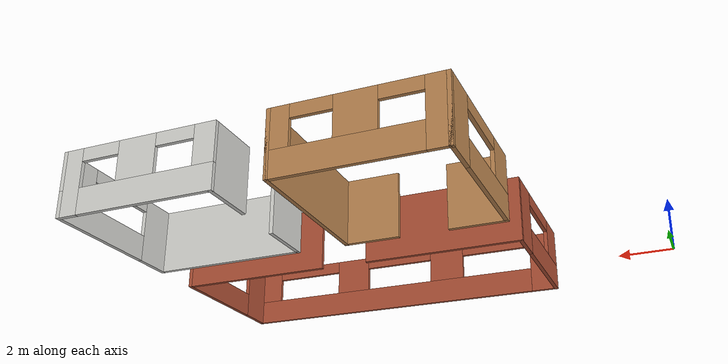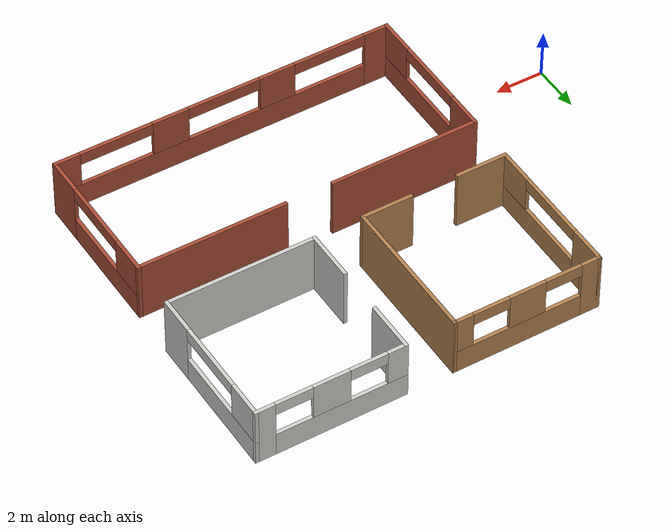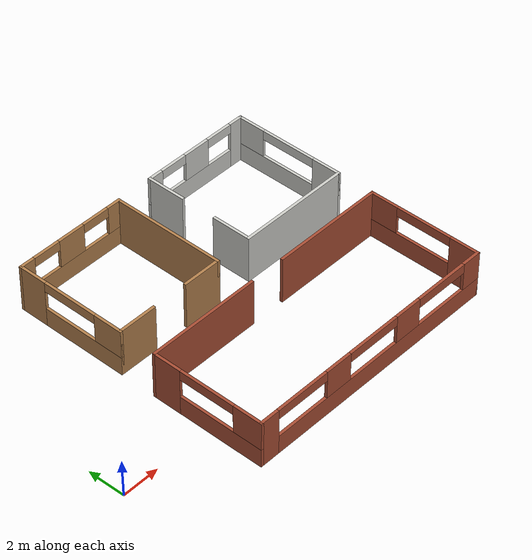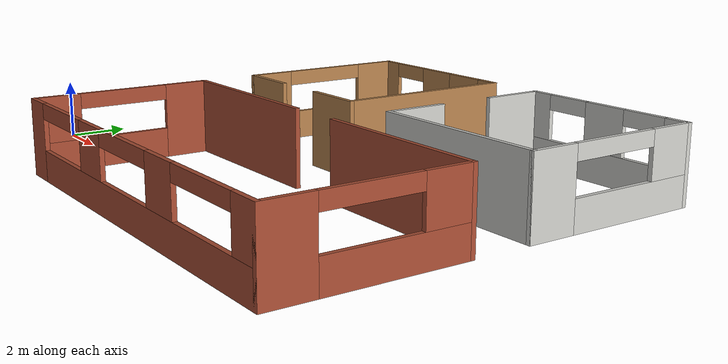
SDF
<?xml version='1.0'?>
<sdf version='1.6'>
  <model name='planning_project_big'>
    <pose frame=''>12 4 0 0 -0 0</pose>
    <link name='Wall_0'>
      <pose frame=''>-4 7 0 0 -0 0</pose>
      <visual name='Wall_0_Visual_0'>
        <pose frame=''>-2.6625 0 1.25 0 -0 0</pose>
        <geometry>
          <box>
            <size>0.825 0.15 2.5</size>
          </box>
        </geometry>
        <material>
          <script>
            <uri>file://media/materials/scripts/gazebo.material</uri>
            <name>Gazebo/Wood</name>
          </script>
          <ambient>1 1 1 1</ambient>
        </material>
      </visual>
      <collision name='Wall_0_Collision_0'>
        <geometry>
          <box>
            <size>0.825 0.15 2.5</size>
          </box>
        </geometry>
        <pose frame=''>-2.6625 0 1.25 0 -0 0</pose>
      </collision>
      <visual name='Wall_0_Visual_1'>
        <pose frame=''>0.4125 0 0.5 0 -0 0</pose>
        <geometry>
          <box>
            <size>5.325 0.15 1</size>
          </box>
        </geometry>
        <material>
          <script>
            <uri>file://media/materials/scripts/gazebo.material</uri>
            <name>Gazebo/Wood</name>
          </script>
          <ambient>1 1 1 1</ambient>
        </material>
      </visual>
      <collision name='Wall_0_Collision_1'>
        <geometry>
          <box>
            <size>5.325 0.15 1</size>
          </box>
        </geometry>
        <pose frame=''>0.4125 0 0.5 0 -0 0</pose>
      </collision>
      <visual name='Wall_0_Visual_2'>
        <pose frame=''>0 0 1.75 0 -0 0</pose>
        <geometry>
          <box>
            <size>1.5 0.15 1.5</size>
          </box>
        </geometry>
        <material>
          <script>
            <uri>file://media/materials/scripts/gazebo.material</uri>
            <name>Gazebo/Wood</name>
          </script>
          <ambient>1 1 1 1</ambient>
        </material>
      </visual>
      <collision name='Wall_0_Collision_2'>
        <geometry>
          <box>
            <size>1.5 0.15 1.5</size>
          </box>
        </geometry>
        <pose frame=''>0 0 1.75 0 -0 0</pose>
      </collision>
      <visual name='Wall_0_Visual_3'>
        <pose frame=''>2.6625 0 1.75 0 -0 0</pose>
        <geometry>
          <box>
            <size>0.825 0.15 1.5</size>
          </box>
        </geometry>
        <material>
          <script>
            <uri>file://media/materials/scripts/gazebo.material</uri>
            <name>Gazebo/Wood</name>
          </script>
          <ambient>1 1 1 1</ambient>
        </material>
      </visual>
      <collision name='Wall_0_Collision_3'>
        <geometry>
          <box>
            <size>0.825 0.15 1.5</size>
          </box>
        </geometry>
        <pose frame=''>2.6625 0 1.75 0 -0 0</pose>
      </collision>
      <visual name='Wall_0_Visual_4'>
        <pose frame=''>-1.5 0 2.25 0 -0 0</pose>
        <geometry>
          <box>
            <size>1.5 0.15 0.5</size>
          </box>
        </geometry>
        <material>
          <script>
            <uri>file://media/materials/scripts/gazebo.material</uri>
            <name>Gazebo/Wood</name>
          </script>
          <ambient>1 1 1 1</ambient>
        </material>
      </visual>
      <collision name='Wall_0_Collision_4'>
        <geometry>
          <box>
            <size>1.5 0.15 0.5</size>
          </box>
        </geometry>
        <pose frame=''>-1.5 0 2.25 0 -0 0</pose>
      </collision>
      <visual name='Wall_0_Visual_5'>
        <pose frame=''>1.5 0 2.25 0 -0 0</pose>
        <geometry>
          <box>
            <size>1.5 0.15 0.5</size>
          </box>
        </geometry>
        <material>
          <script>
            <uri>file://media/materials/scripts/gazebo.material</uri>
            <name>Gazebo/Wood</name>
          </script>
          <ambient>1 1 1 1</ambient>
        </material>
      </visual>
      <collision name='Wall_0_Collision_5'>
        <geometry>
          <box>
            <size>1.5 0.15 0.5</size>
          </box>
        </geometry>
        <pose frame=''>1.5 0 2.25 0 -0 0</pose>
      </collision>
    </link>
    <link name='Wall_1'>
      <collision name='Wall_1_Collision'>
        <geometry>
          <box>
            <size>6.15 0.15 2.5</size>
          </box>
        </geometry>
        <pose frame=''>0 0 1.25 0 -0 0</pose>
      </collision>
      <visual name='Wall_1_Visual'>
        <pose frame=''>0 0 1.25 0 -0 0</pose>
        <geometry>
          <box>
            <size>6.15 0.15 2.5</size>
          </box>
        </geometry>
        <material>
          <script>
            <uri>file://media/materials/scripts/gazebo.material</uri>
            <name>Gazebo/Wood</name>
          </script>
          <ambient>1 1 1 1</ambient>
        </material>
      </visual>
      <pose frame=''>-1 4 0 0 0 -1.5708</pose>
    </link>
    <link name='Wall_10'>
      <pose frame=''>4 7 0 0 -0 3.14159</pose>
      <visual name='Wall_10_Visual_0'>
        <pose frame=''>-2.6625 0 1.25 0 -0 0</pose>
        <geometry>
          <box>
            <size>0.825 0.15 2.5</size>
          </box>
        </geometry>
        <material>
          <script>
            <uri>file://media/materials/scripts/gazebo.material</uri>
            <name>Gazebo/CeilingTiled</name>
          </script>
          <ambient>1 1 1 1</ambient>
        </material>
      </visual>
      <collision name='Wall_10_Collision_0'>
        <geometry>
          <box>
            <size>0.825 0.15 2.5</size>
          </box>
        </geometry>
        <pose frame=''>-2.6625 0 1.25 0 -0 0</pose>
      </collision>
      <visual name='Wall_10_Visual_1'>
        <pose frame=''>0.4125 0 0.5 0 -0 0</pose>
        <geometry>
          <box>
            <size>5.325 0.15 1</size>
          </box>
        </geometry>
        <material>
          <script>
            <uri>file://media/materials/scripts/gazebo.material</uri>
            <name>Gazebo/CeilingTiled</name>
          </script>
          <ambient>1 1 1 1</ambient>
        </material>
      </visual>
      <collision name='Wall_10_Collision_1'>
        <geometry>
          <box>
            <size>5.325 0.15 1</size>
          </box>
        </geometry>
        <pose frame=''>0.4125 0 0.5 0 -0 0</pose>
      </collision>
      <visual name='Wall_10_Visual_2'>
        <pose frame=''>0 0 1.75 0 -0 0</pose>
        <geometry>
          <box>
            <size>1.5 0.15 1.5</size>
          </box>
        </geometry>
        <material>
          <script>
            <uri>file://media/materials/scripts/gazebo.material</uri>
            <name>Gazebo/CeilingTiled</name>
          </script>
          <ambient>1 1 1 1</ambient>
        </material>
      </visual>
      <collision name='Wall_10_Collision_2'>
        <geometry>
          <box>
            <size>1.5 0.15 1.5</size>
          </box>
        </geometry>
        <pose frame=''>0 0 1.75 0 -0 0</pose>
      </collision>
      <visual name='Wall_10_Visual_3'>
        <pose frame=''>2.6625 0 1.75 0 -0 0</pose>
        <geometry>
          <box>
            <size>0.825 0.15 1.5</size>
          </box>
        </geometry>
        <material>
          <script>
            <uri>file://media/materials/scripts/gazebo.material</uri>
            <name>Gazebo/CeilingTiled</name>
          </script>
          <ambient>1 1 1 1</ambient>
        </material>
      </visual>
      <collision name='Wall_10_Collision_3'>
        <geometry>
          <box>
            <size>0.825 0.15 1.5</size>
          </box>
        </geometry>
        <pose frame=''>2.6625 0 1.75 0 -0 0</pose>
      </collision>
      <visual name='Wall_10_Visual_4'>
        <pose frame=''>-1.5 0 2.25 0 -0 0</pose>
        <geometry>
          <box>
            <size>1.5 0.15 0.5</size>
          </box>
        </geometry>
        <material>
          <script>
            <uri>file://media/materials/scripts/gazebo.material</uri>
            <name>Gazebo/CeilingTiled</name>
          </script>
          <ambient>1 1 1 1</ambient>
        </material>
      </visual>
      <collision name='Wall_10_Collision_4'>
        <geometry>
          <box>
            <size>1.5 0.15 0.5</size>
          </box>
        </geometry>
        <pose frame=''>-1.5 0 2.25 0 -0 0</pose>
      </collision>
      <visual name='Wall_10_Visual_5'>
        <pose frame=''>1.5 0 2.25 0 -0 0</pose>
        <geometry>
          <box>
            <size>1.5 0.15 0.5</size>
          </box>
        </geometry>
        <material>
          <script>
            <uri>file://media/materials/scripts/gazebo.material</uri>
            <name>Gazebo/CeilingTiled</name>
          </script>
          <ambient>1 1 1 1</ambient>
        </material>
      </visual>
      <collision name='Wall_10_Collision_5'>
        <geometry>
          <box>
            <size>1.5 0.15 0.5</size>
          </box>
        </geometry>
        <pose frame=''>1.5 0 2.25 0 -0 0</pose>
      </collision>
    </link>
    <link name='Wall_11'>
      <collision name='Wall_11_Collision'>
        <geometry>
          <box>
            <size>2.15 0.15 2.5</size>
          </box>
        </geometry>
        <pose frame=''>0 0 1.25 0 -0 0</pose>
      </collision>
      <visual name='Wall_11_Visual'>
        <pose frame=''>0 0 1.25 0 -0 0</pose>
        <geometry>
          <box>
            <size>2.15 0.15 2.5</size>
          </box>
        </geometry>
        <material>
          <script>
            <uri>file://media/materials/scripts/gazebo.material</uri>
            <name>Gazebo/CeilingTiled</name>
          </script>
          <ambient>1 1 1 1</ambient>
        </material>
      </visual>
      <pose frame=''>1 6 0 0 0 -1.5708</pose>
    </link>
    <link name='Wall_13'>
      <collision name='Wall_13_Collision'>
        <geometry>
          <box>
            <size>6.15 0.15 2.5</size>
          </box>
        </geometry>
        <pose frame=''>0 0 1.25 0 -0 0</pose>
      </collision>
      <visual name='Wall_13_Visual'>
        <pose frame=''>0 0 1.25 0 -0 0</pose>
        <geometry>
          <box>
            <size>6.15 0.15 2.5</size>
          </box>
        </geometry>
        <material>
          <script>
            <uri>file://media/materials/scripts/gazebo.material</uri>
            <name>Gazebo/Bricks</name>
          </script>
          <ambient>1 1 1 1</ambient>
        </material>
      </visual>
      <pose frame=''>-4 -1 0 0 -0 3.14159</pose>
    </link>
    <link name='Wall_14'>
      <pose frame=''>-7 -4 0 0 0 -1.5708</pose>
      <visual name='Wall_14_Visual_0'>
        <pose frame=''>-2.2875 0 1.25 0 -0 0</pose>
        <geometry>
          <box>
            <size>1.575 0.15 2.5</size>
          </box>
        </geometry>
        <material>
          <script>
            <uri>file://media/materials/scripts/gazebo.material</uri>
            <name>Gazebo/Bricks</name>
          </script>
          <ambient>1 1 1 1</ambient>
        </material>
      </visual>
      <collision name='Wall_14_Collision_0'>
        <geometry>
          <box>
            <size>1.575 0.15 2.5</size>
          </box>
        </geometry>
        <pose frame=''>-2.2875 0 1.25 0 -0 0</pose>
      </collision>
      <visual name='Wall_14_Visual_1'>
        <pose frame=''>0.7875 0 0.5 0 -0 0</pose>
        <geometry>
          <box>
            <size>4.575 0.15 1</size>
          </box>
        </geometry>
        <material>
          <script>
            <uri>file://media/materials/scripts/gazebo.material</uri>
            <name>Gazebo/Bricks</name>
          </script>
          <ambient>1 1 1 1</ambient>
        </material>
      </visual>
      <collision name='Wall_14_Collision_1'>
        <geometry>
          <box>
            <size>4.575 0.15 1</size>
          </box>
        </geometry>
        <pose frame=''>0.7875 0 0.5 0 -0 0</pose>
      </collision>
      <visual name='Wall_14_Visual_2'>
        <pose frame=''>2.2875 0 1.75 0 -0 0</pose>
        <geometry>
          <box>
            <size>1.575 0.15 1.5</size>
          </box>
        </geometry>
        <material>
          <script>
            <uri>file://media/materials/scripts/gazebo.material</uri>
            <name>Gazebo/Bricks</name>
          </script>
          <ambient>1 1 1 1</ambient>
        </material>
      </visual>
      <collision name='Wall_14_Collision_2'>
        <geometry>
          <box>
            <size>1.575 0.15 1.5</size>
          </box>
        </geometry>
        <pose frame=''>2.2875 0 1.75 0 -0 0</pose>
      </collision>
      <visual name='Wall_14_Visual_3'>
        <pose frame=''>0 0 2.25 0 -0 0</pose>
        <geometry>
          <box>
            <size>3 0.15 0.5</size>
          </box>
        </geometry>
        <material>
          <script>
            <uri>file://media/materials/scripts/gazebo.material</uri>
            <name>Gazebo/Bricks</name>
          </script>
          <ambient>1 1 1 1</ambient>
        </material>
      </visual>
      <collision name='Wall_14_Collision_3'>
        <geometry>
          <box>
            <size>3 0.15 0.5</size>
          </box>
        </geometry>
        <pose frame=''>0 0 2.25 0 -0 0</pose>
      </collision>
    </link>
    <link name='Wall_15'>
      <pose frame=''>0 -7 0 0 -0 0</pose>
      <visual name='Wall_15_Visual_0'>
        <pose frame=''>-6.5375 0 1.25 0 -0 0</pose>
        <geometry>
          <box>
            <size>1.075 0.15 2.5</size>
          </box>
        </geometry>
        <material>
          <script>
            <uri>file://media/materials/scripts/gazebo.material</uri>
            <name>Gazebo/Bricks</name>
          </script>
          <ambient>1 1 1 1</ambient>
        </material>
      </visual>
      <collision name='Wall_15_Collision_0'>
        <geometry>
          <box>
            <size>1.075 0.15 2.5</size>
          </box>
        </geometry>
        <pose frame=''>-6.5375 0 1.25 0 -0 0</pose>
      </collision>
      <visual name='Wall_15_Visual_1'>
        <pose frame=''>0.5375 0 0.5 0 -0 0</pose>
        <geometry>
          <box>
            <size>13.075 0.15 1</size>
          </box>
        </geometry>
        <material>
          <script>
            <uri>file://media/materials/scripts/gazebo.material</uri>
            <name>Gazebo/Bricks</name>
          </script>
          <ambient>1 1 1 1</ambient>
        </material>
      </visual>
      <collision name='Wall_15_Collision_1'>
        <geometry>
          <box>
            <size>13.075 0.15 1</size>
          </box>
        </geometry>
        <pose frame=''>0.5375 0 0.5 0 -0 0</pose>
      </collision>
      <visual name='Wall_15_Visual_2'>
        <pose frame=''>-2.25 0 1.75 0 -0 0</pose>
        <geometry>
          <box>
            <size>1.5 0.15 1.5</size>
          </box>
        </geometry>
        <material>
          <script>
            <uri>file://media/materials/scripts/gazebo.material</uri>
            <name>Gazebo/Bricks</name>
          </script>
          <ambient>1 1 1 1</ambient>
        </material>
      </visual>
      <collision name='Wall_15_Collision_2'>
        <geometry>
          <box>
            <size>1.5 0.15 1.5</size>
          </box>
        </geometry>
        <pose frame=''>-2.25 0 1.75 0 -0 0</pose>
      </collision>
      <visual name='Wall_15_Visual_3'>
        <pose frame=''>2.25 0 1.75 0 -0 0</pose>
        <geometry>
          <box>
            <size>1.5 0.15 1.5</size>
          </box>
        </geometry>
        <material>
          <script>
            <uri>file://media/materials/scripts/gazebo.material</uri>
            <name>Gazebo/Bricks</name>
          </script>
          <ambient>1 1 1 1</ambient>
        </material>
      </visual>
      <collision name='Wall_15_Collision_3'>
        <geometry>
          <box>
            <size>1.5 0.15 1.5</size>
          </box>
        </geometry>
        <pose frame=''>2.25 0 1.75 0 -0 0</pose>
      </collision>
      <visual name='Wall_15_Visual_4'>
        <pose frame=''>6.5375 0 1.75 0 -0 0</pose>
        <geometry>
          <box>
            <size>1.075 0.15 1.5</size>
          </box>
        </geometry>
        <material>
          <script>
            <uri>file://media/materials/scripts/gazebo.material</uri>
            <name>Gazebo/Bricks</name>
          </script>
          <ambient>1 1 1 1</ambient>
        </material>
      </visual>
      <collision name='Wall_15_Collision_4'>
        <geometry>
          <box>
            <size>1.075 0.15 1.5</size>
          </box>
        </geometry>
        <pose frame=''>6.5375 0 1.75 0 -0 0</pose>
      </collision>
      <visual name='Wall_15_Visual_5'>
        <pose frame=''>-4.5 0 2.25 0 -0 0</pose>
        <geometry>
          <box>
            <size>3 0.15 0.5</size>
          </box>
        </geometry>
        <material>
          <script>
            <uri>file://media/materials/scripts/gazebo.material</uri>
            <name>Gazebo/Bricks</name>
          </script>
          <ambient>1 1 1 1</ambient>
        </material>
      </visual>
      <collision name='Wall_15_Collision_5'>
        <geometry>
          <box>
            <size>3 0.15 0.5</size>
          </box>
        </geometry>
        <pose frame=''>-4.5 0 2.25 0 -0 0</pose>
      </collision>
      <visual name='Wall_15_Visual_6'>
        <pose frame=''>-0 0 2.25 0 -0 0</pose>
        <geometry>
          <box>
            <size>3 0.15 0.5</size>
          </box>
        </geometry>
        <material>
          <script>
            <uri>file://media/materials/scripts/gazebo.material</uri>
            <name>Gazebo/Bricks</name>
          </script>
          <ambient>1 1 1 1</ambient>
        </material>
      </visual>
      <collision name='Wall_15_Collision_6'>
        <geometry>
          <box>
            <size>3 0.15 0.5</size>
          </box>
        </geometry>
        <pose frame=''>-0 0 2.25 0 -0 0</pose>
      </collision>
      <visual name='Wall_15_Visual_7'>
        <pose frame=''>4.5 0 2.25 0 -0 0</pose>
        <geometry>
          <box>
            <size>3 0.15 0.5</size>
          </box>
        </geometry>
        <material>
          <script>
            <uri>file://media/materials/scripts/gazebo.material</uri>
            <name>Gazebo/Bricks</name>
          </script>
          <ambient>1 1 1 1</ambient>
        </material>
      </visual>
      <collision name='Wall_15_Collision_7'>
        <geometry>
          <box>
            <size>3 0.15 0.5</size>
          </box>
        </geometry>
        <pose frame=''>4.5 0 2.25 0 -0 0</pose>
      </collision>
    </link>
    <link name='Wall_16'>
      <pose frame=''>7 -4 0 0 -0 1.5708</pose>
      <visual name='Wall_16_Visual_0'>
        <pose frame=''>-2.2875 0 1.25 0 -0 0</pose>
        <geometry>
          <box>
            <size>1.575 0.15 2.5</size>
          </box>
        </geometry>
        <material>
          <script>
            <uri>file://media/materials/scripts/gazebo.material</uri>
            <name>Gazebo/Bricks</name>
          </script>
          <ambient>1 1 1 1</ambient>
        </material>
      </visual>
      <collision name='Wall_16_Collision_0'>
        <geometry>
          <box>
            <size>1.575 0.15 2.5</size>
          </box>
        </geometry>
        <pose frame=''>-2.2875 0 1.25 0 -0 0</pose>
      </collision>
      <visual name='Wall_16_Visual_1'>
        <pose frame=''>0.7875 0 0.5 0 -0 0</pose>
        <geometry>
          <box>
            <size>4.575 0.15 1</size>
          </box>
        </geometry>
        <material>
          <script>
            <uri>file://media/materials/scripts/gazebo.material</uri>
            <name>Gazebo/Bricks</name>
          </script>
          <ambient>1 1 1 1</ambient>
        </material>
      </visual>
      <collision name='Wall_16_Collision_1'>
        <geometry>
          <box>
            <size>4.575 0.15 1</size>
          </box>
        </geometry>
        <pose frame=''>0.7875 0 0.5 0 -0 0</pose>
      </collision>
      <visual name='Wall_16_Visual_2'>
        <pose frame=''>2.2875 0 1.75 0 -0 0</pose>
        <geometry>
          <box>
            <size>1.575 0.15 1.5</size>
          </box>
        </geometry>
        <material>
          <script>
            <uri>file://media/materials/scripts/gazebo.material</uri>
            <name>Gazebo/Bricks</name>
          </script>
          <ambient>1 1 1 1</ambient>
        </material>
      </visual>
      <collision name='Wall_16_Collision_2'>
        <geometry>
          <box>
            <size>1.575 0.15 1.5</size>
          </box>
        </geometry>
        <pose frame=''>2.2875 0 1.75 0 -0 0</pose>
      </collision>
      <visual name='Wall_16_Visual_3'>
        <pose frame=''>0 0 2.25 0 -0 0</pose>
        <geometry>
          <box>
            <size>3 0.15 0.5</size>
          </box>
        </geometry>
        <material>
          <script>
            <uri>file://media/materials/scripts/gazebo.material</uri>
            <name>Gazebo/Bricks</name>
          </script>
          <ambient>1 1 1 1</ambient>
        </material>
      </visual>
      <collision name='Wall_16_Collision_3'>
        <geometry>
          <box>
            <size>3 0.15 0.5</size>
          </box>
        </geometry>
        <pose frame=''>0 0 2.25 0 -0 0</pose>
      </collision>
    </link>
    <link name='Wall_17'>
      <collision name='Wall_17_Collision'>
        <geometry>
          <box>
            <size>6.15 0.15 2.5</size>
          </box>
        </geometry>
        <pose frame=''>0 0 1.25 0 -0 0</pose>
      </collision>
      <visual name='Wall_17_Visual'>
        <pose frame=''>0 0 1.25 0 -0 0</pose>
        <geometry>
          <box>
            <size>6.15 0.15 2.5</size>
          </box>
        </geometry>
        <material>
          <script>
            <uri>file://media/materials/scripts/gazebo.material</uri>
            <name>Gazebo/Bricks</name>
          </script>
          <ambient>1 1 1 1</ambient>
        </material>
      </visual>
      <pose frame=''>4 -1 0 0 -0 3.14159</pose>
    </link>
    <link name='Wall_2'>
      <collision name='Wall_2_Collision'>
        <geometry>
          <box>
            <size>2.15 0.15 2.5</size>
          </box>
        </geometry>
        <pose frame=''>0 0 1.25 0 -0 0</pose>
      </collision>
      <visual name='Wall_2_Visual'>
        <pose frame=''>0 0 1.25 0 -0 0</pose>
        <geometry>
          <box>
            <size>2.15 0.15 2.5</size>
          </box>
        </geometry>
        <material>
          <script>
            <uri>file://media/materials/scripts/gazebo.material</uri>
            <name>Gazebo/Wood</name>
          </script>
          <ambient>1 1 1 1</ambient>
        </material>
      </visual>
      <pose frame=''>-2 1 0 0 -0 3.14159</pose>
    </link>
    <link name='Wall_4'>
      <pose frame=''>-7 4 0 0 0 -1.5708</pose>
      <visual name='Wall_4_Visual_0'>
        <pose frame=''>-2.2875 0 1.25 0 -0 0</pose>
        <geometry>
          <box>
            <size>1.575 0.15 2.5</size>
          </box>
        </geometry>
        <material>
          <script>
            <uri>file://media/materials/scripts/gazebo.material</uri>
            <name>Gazebo/Wood</name>
          </script>
          <ambient>1 1 1 1</ambient>
        </material>
      </visual>
      <collision name='Wall_4_Collision_0'>
        <geometry>
          <box>
            <size>1.575 0.15 2.5</size>
          </box>
        </geometry>
        <pose frame=''>-2.2875 0 1.25 0 -0 0</pose>
      </collision>
      <visual name='Wall_4_Visual_1'>
        <pose frame=''>0.7875 0 0.5 0 -0 0</pose>
        <geometry>
          <box>
            <size>4.575 0.15 1</size>
          </box>
        </geometry>
        <material>
          <script>
            <uri>file://media/materials/scripts/gazebo.material</uri>
            <name>Gazebo/Wood</name>
          </script>
          <ambient>1 1 1 1</ambient>
        </material>
      </visual>
      <collision name='Wall_4_Collision_1'>
        <geometry>
          <box>
            <size>4.575 0.15 1</size>
          </box>
        </geometry>
        <pose frame=''>0.7875 0 0.5 0 -0 0</pose>
      </collision>
      <visual name='Wall_4_Visual_2'>
        <pose frame=''>2.2875 0 1.75 0 -0 0</pose>
        <geometry>
          <box>
            <size>1.575 0.15 1.5</size>
          </box>
        </geometry>
        <material>
          <script>
            <uri>file://media/materials/scripts/gazebo.material</uri>
            <name>Gazebo/Wood</name>
          </script>
          <ambient>1 1 1 1</ambient>
        </material>
      </visual>
      <collision name='Wall_4_Collision_2'>
        <geometry>
          <box>
            <size>1.575 0.15 1.5</size>
          </box>
        </geometry>
        <pose frame=''>2.2875 0 1.75 0 -0 0</pose>
      </collision>
      <visual name='Wall_4_Visual_3'>
        <pose frame=''>0 0 2.25 0 -0 0</pose>
        <geometry>
          <box>
            <size>3 0.15 0.5</size>
          </box>
        </geometry>
        <material>
          <script>
            <uri>file://media/materials/scripts/gazebo.material</uri>
            <name>Gazebo/Wood</name>
          </script>
          <ambient>1 1 1 1</ambient>
        </material>
      </visual>
      <collision name='Wall_4_Collision_3'>
        <geometry>
          <box>
            <size>3 0.15 0.5</size>
          </box>
        </geometry>
        <pose frame=''>0 0 2.25 0 -0 0</pose>
      </collision>
    </link>
    <link name='Wall_5'>
      <collision name='Wall_5_Collision'>
        <geometry>
          <box>
            <size>2.15 0.15 2.5</size>
          </box>
        </geometry>
        <pose frame=''>0 0 1.25 0 -0 0</pose>
      </collision>
      <visual name='Wall_5_Visual'>
        <pose frame=''>0 0 1.25 0 -0 0</pose>
        <geometry>
          <box>
            <size>2.15 0.15 2.5</size>
          </box>
        </geometry>
        <material>
          <script>
            <uri>file://media/materials/scripts/gazebo.material</uri>
            <name>Gazebo/Wood</name>
          </script>
          <ambient>1 1 1 1</ambient>
        </material>
      </visual>
      <pose frame=''>-6 1 0 0 -0 0</pose>
    </link>
    <link name='Wall_7'>
      <collision name='Wall_7_Collision'>
        <geometry>
          <box>
            <size>2.15 0.15 2.5</size>
          </box>
        </geometry>
        <pose frame=''>0 0 1.25 0 -0 0</pose>
      </collision>
      <visual name='Wall_7_Visual'>
        <pose frame=''>0 0 1.25 0 -0 0</pose>
        <geometry>
          <box>
            <size>2.15 0.15 2.5</size>
          </box>
        </geometry>
        <material>
          <script>
            <uri>file://media/materials/scripts/gazebo.material</uri>
            <name>Gazebo/CeilingTiled</name>
          </script>
          <ambient>1 1 1 1</ambient>
        </material>
      </visual>
      <pose frame=''>1 2 0 0 0 -1.5708</pose>
    </link>
    <link name='Wall_8'>
      <collision name='Wall_8_Collision'>
        <geometry>
          <box>
            <size>6.15 0.15 2.5</size>
          </box>
        </geometry>
        <pose frame=''>0 0 1.25 0 -0 0</pose>
      </collision>
      <visual name='Wall_8_Visual'>
        <pose frame=''>0 0 1.25 0 -0 0</pose>
        <geometry>
          <box>
            <size>6.15 0.15 2.5</size>
          </box>
        </geometry>
        <material>
          <script>
            <uri>file://media/materials/scripts/gazebo.material</uri>
            <name>Gazebo/CeilingTiled</name>
          </script>
          <ambient>1 1 1 1</ambient>
        </material>
      </visual>
      <pose frame=''>4 1 0 0 -0 0</pose>
    </link>
    <link name='Wall_9'>
      <pose frame=''>7 4 0 0 -0 1.5708</pose>
      <visual name='Wall_9_Visual_0'>
        <pose frame=''>-2.2875 0 1.25 0 -0 0</pose>
        <geometry>
          <box>
            <size>1.575 0.15 2.5</size>
          </box>
        </geometry>
        <material>
          <script>
            <uri>file://media/materials/scripts/gazebo.material</uri>
            <name>Gazebo/CeilingTiled</name>
          </script>
          <ambient>1 1 1 1</ambient>
        </material>
      </visual>
      <collision name='Wall_9_Collision_0'>
        <geometry>
          <box>
            <size>1.575 0.15 2.5</size>
          </box>
        </geometry>
        <pose frame=''>-2.2875 0 1.25 0 -0 0</pose>
      </collision>
      <visual name='Wall_9_Visual_1'>
        <pose frame=''>0.7875 0 0.5 0 -0 0</pose>
        <geometry>
          <box>
            <size>4.575 0.15 1</size>
          </box>
        </geometry>
        <material>
          <script>
            <uri>file://media/materials/scripts/gazebo.material</uri>
            <name>Gazebo/CeilingTiled</name>
          </script>
          <ambient>1 1 1 1</ambient>
        </material>
      </visual>
      <collision name='Wall_9_Collision_1'>
        <geometry>
          <box>
            <size>4.575 0.15 1</size>
          </box>
        </geometry>
        <pose frame=''>0.7875 0 0.5 0 -0 0</pose>
      </collision>
      <visual name='Wall_9_Visual_2'>
        <pose frame=''>2.2875 0 1.75 0 -0 0</pose>
        <geometry>
          <box>
            <size>1.575 0.15 1.5</size>
          </box>
        </geometry>
        <material>
          <script>
            <uri>file://media/materials/scripts/gazebo.material</uri>
            <name>Gazebo/CeilingTiled</name>
          </script>
          <ambient>1 1 1 1</ambient>
        </material>
      </visual>
      <collision name='Wall_9_Collision_2'>
        <geometry>
          <box>
            <size>1.575 0.15 1.5</size>
          </box>
        </geometry>
        <pose frame=''>2.2875 0 1.75 0 -0 0</pose>
      </collision>
      <visual name='Wall_9_Visual_3'>
        <pose frame=''>0 0 2.25 0 -0 0</pose>
        <geometry>
          <box>
            <size>3 0.15 0.5</size>
          </box>
        </geometry>
        <material>
          <script>
            <uri>file://media/materials/scripts/gazebo.material</uri>
            <name>Gazebo/CeilingTiled</name>
          </script>
          <ambient>1 1 1 1</ambient>
        </material>
      </visual>
      <collision name='Wall_9_Collision_3'>
        <geometry>
          <box>
            <size>3 0.15 0.5</size>
          </box>
        </geometry>
        <pose frame=''>0 0 2.25 0 -0 0</pose>
      </collision>
    </link>
    <static>1</static>
  </model>
</sdf>
